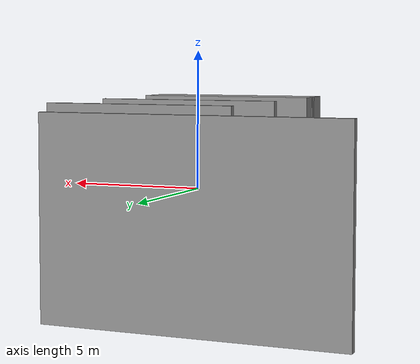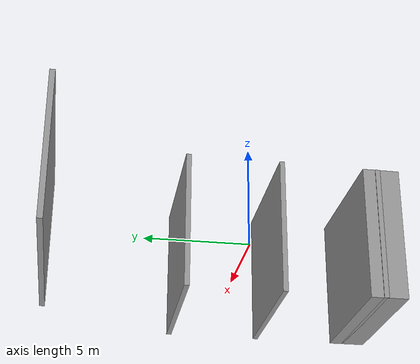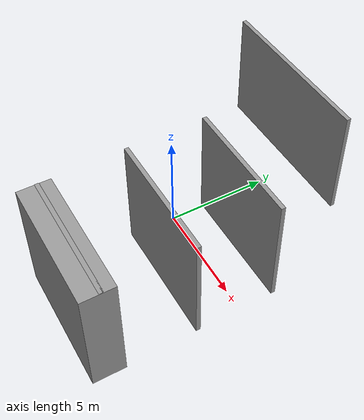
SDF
<?xml version='1.0'?>
<sdf version='1.7'>
  <model name='Untitled'>
    <link name='link_0'>
      <inertial>
        <mass>14.2696</mass>
        <inertia>
          <ixx>48.2133</ixx>
          <ixy>0</ixy>
          <ixz>0</ixz>
          <iyy>158.84</iyy>
          <iyz>0</iyz>
          <izz>110.755</izz>
        </inertia>
        <pose>0 0 0 0 -0 0</pose>
      </inertial>
      <pose>-3.73678 9.37764 0 0 -0 0</pose>
      <visual name='visual'>
        <pose>0 0 0 0 -0 0</pose>
        <geometry>
          <box>
            <size>9.64809 0.232379 6.36325</size>
          </box>
        </geometry>
        <material>
          <lighting>1</lighting>
          <script>
            <uri>file://media/materials/scripts/gazebo.material</uri>
            <name>Gazebo/Grey</name>
          </script>
          <shader type='pixel'/>
        </material>
        <transparency>0</transparency>
        <cast_shadows>1</cast_shadows>
      </visual>
      <collision name='collision'>
        <laser_retro>0</laser_retro>
        <max_contacts>10</max_contacts>
        <pose>0 0 0 0 -0 0</pose>
        <geometry>
          <box>
            <size>9.64809 0.232379 6.36325</size>
          </box>
        </geometry>
        <surface>
          <friction>
            <ode>
              <mu>1</mu>
              <mu2>1</mu2>
              <fdir1>0 0 0</fdir1>
              <slip1>0</slip1>
              <slip2>0</slip2>
            </ode>
            <torsional>
              <coefficient>1</coefficient>
              <patch_radius>0</patch_radius>
              <surface_radius>0</surface_radius>
              <use_patch_radius>1</use_patch_radius>
              <ode>
                <slip>0</slip>
              </ode>
            </torsional>
          </friction>
          <bounce>
            <restitution_coefficient>0</restitution_coefficient>
            <threshold>1e+06</threshold>
          </bounce>
          <contact>
            <collide_without_contact>0</collide_without_contact>
            <collide_without_contact_bitmask>1</collide_without_contact_bitmask>
            <collide_bitmask>1</collide_bitmask>
            <ode>
              <soft_cfm>0</soft_cfm>
              <soft_erp>0.2</soft_erp>
              <kp>1e+13</kp>
              <kd>1</kd>
              <max_vel>0.01</max_vel>
              <min_depth>0</min_depth>
            </ode>
            <bullet>
              <split_impulse>1</split_impulse>
              <split_impulse_penetration_threshold>-0.01</split_impulse_penetration_threshold>
              <soft_cfm>0</soft_cfm>
              <soft_erp>0.2</soft_erp>
              <kp>1e+13</kp>
              <kd>1</kd>
            </bullet>
          </contact>
        </surface>
      </collision>
    </link>
    <link name='link_0_clone'>
      <inertial>
        <mass>10.2728</mass>
        <inertia>
          <ixx>34.7092</ixx>
          <ixy>0</ixy>
          <ixz>0</ixz>
          <iyy>75.9624</iyy>
          <iyz>0</iyz>
          <izz>41.3457</izz>
        </inertia>
        <pose>0 0 0 0 -0 0</pose>
      </inertial>
      <pose>0.859265 3.25045 0 0 -0 0</pose>
      <visual name='visual'>
        <pose>0 0 0 0 -0 0</pose>
        <geometry>
          <box>
            <size>6.94574 0.232379 6.36325</size>
          </box>
        </geometry>
        <material>
          <lighting>1</lighting>
          <script>
            <uri>file://media/materials/scripts/gazebo.material</uri>
            <name>Gazebo/Grey</name>
          </script>
          <shader type='pixel'/>
        </material>
        <transparency>0</transparency>
        <cast_shadows>1</cast_shadows>
      </visual>
      <collision name='collision'>
        <laser_retro>0</laser_retro>
        <max_contacts>10</max_contacts>
        <pose>0 0 0 0 -0 0</pose>
        <geometry>
          <box>
            <size>6.94574 0.232379 6.36325</size>
          </box>
        </geometry>
        <surface>
          <friction>
            <ode>
              <mu>1</mu>
              <mu2>1</mu2>
              <fdir1>0 0 0</fdir1>
              <slip1>0</slip1>
              <slip2>0</slip2>
            </ode>
            <torsional>
              <coefficient>1</coefficient>
              <patch_radius>0</patch_radius>
              <surface_radius>0</surface_radius>
              <use_patch_radius>1</use_patch_radius>
              <ode>
                <slip>0</slip>
              </ode>
            </torsional>
          </friction>
          <bounce>
            <restitution_coefficient>0</restitution_coefficient>
            <threshold>1e+06</threshold>
          </bounce>
          <contact>
            <collide_without_contact>0</collide_without_contact>
            <collide_without_contact_bitmask>1</collide_without_contact_bitmask>
            <collide_bitmask>1</collide_bitmask>
            <ode>
              <soft_cfm>0</soft_cfm>
              <soft_erp>0.2</soft_erp>
              <kp>1e+13</kp>
              <kd>1</kd>
              <max_vel>0.01</max_vel>
              <min_depth>0</min_depth>
            </ode>
            <bullet>
              <split_impulse>1</split_impulse>
              <split_impulse_penetration_threshold>-0.01</split_impulse_penetration_threshold>
              <soft_cfm>0</soft_cfm>
              <soft_erp>0.2</soft_erp>
              <kp>1e+13</kp>
              <kd>1</kd>
            </bullet>
          </contact>
        </surface>
      </collision>
    </link>
    <link name='link_0_clone_clone'>
      <inertial>
        <mass>10.2728</mass>
        <inertia>
          <ixx>34.7092</ixx>
          <ixy>0</ixy>
          <ixz>0</ixz>
          <iyy>75.9624</iyy>
          <iyz>0</iyz>
          <izz>41.3457</izz>
        </inertia>
        <pose>0 0 0 0 -0 0</pose>
      </inertial>
      <pose>0.90707 -1.09514 0 0 -0 0</pose>
      <visual name='visual'>
        <pose>0 0 0 0 -0 0</pose>
        <geometry>
          <box>
            <size>6.94574 0.232379 6.36325</size>
          </box>
        </geometry>
        <material>
          <lighting>1</lighting>
          <script>
            <uri>file://media/materials/scripts/gazebo.material</uri>
            <name>Gazebo/Grey</name>
          </script>
          <shader type='pixel'/>
          <emissive>0 0 0 1</emissive>
        </material>
        <transparency>0</transparency>
        <cast_shadows>1</cast_shadows>
      </visual>
      <collision name='collision'>
        <laser_retro>0</laser_retro>
        <max_contacts>10</max_contacts>
        <pose>0 0 0 0 -0 0</pose>
        <geometry>
          <box>
            <size>6.94574 0.232379 6.36325</size>
          </box>
        </geometry>
        <surface>
          <friction>
            <ode>
              <mu>1</mu>
              <mu2>1</mu2>
              <fdir1>0 0 0</fdir1>
              <slip1>0</slip1>
              <slip2>0</slip2>
            </ode>
            <torsional>
              <coefficient>1</coefficient>
              <patch_radius>0</patch_radius>
              <surface_radius>0</surface_radius>
              <use_patch_radius>1</use_patch_radius>
              <ode>
                <slip>0</slip>
              </ode>
            </torsional>
          </friction>
          <bounce>
            <restitution_coefficient>0</restitution_coefficient>
            <threshold>1e+06</threshold>
          </bounce>
          <contact>
            <collide_without_contact>0</collide_without_contact>
            <collide_without_contact_bitmask>1</collide_without_contact_bitmask>
            <collide_bitmask>1</collide_bitmask>
            <ode>
              <soft_cfm>0</soft_cfm>
              <soft_erp>0.2</soft_erp>
              <kp>1e+13</kp>
              <kd>1</kd>
              <max_vel>0.01</max_vel>
              <min_depth>0</min_depth>
            </ode>
            <bullet>
              <split_impulse>1</split_impulse>
              <split_impulse_penetration_threshold>-0.01</split_impulse_penetration_threshold>
              <soft_cfm>0</soft_cfm>
              <soft_erp>0.2</soft_erp>
              <kp>1e+13</kp>
              <kd>1</kd>
            </bullet>
          </contact>
        </surface>
      </collision>
    </link>
    <link name='link_0_clone_clone_0'>
      <inertial>
        <mass>76.7642</mass>
        <inertia>
          <ixx>278.313</ixx>
          <ixy>0</ixy>
          <ixz>0</ixz>
          <iyy>567.634</iyy>
          <iyz>0</iyz>
          <izz>327.905</izz>
        </inertia>
        <pose>0 0 0 0 -0 0</pose>
      </inertial>
      <pose>0.998133 -5.846 0 0 -0 0</pose>
      <visual name='visual'>
        <pose>0 0 0 0 -0 0</pose>
        <geometry>
          <box>
            <size>6.94574 1.7366 6.36325</size>
          </box>
        </geometry>
        <material>
          <lighting>1</lighting>
          <script>
            <uri>file://media/materials/scripts/gazebo.material</uri>
            <name>Gazebo/Grey</name>
          </script>
          <shader type='pixel'/>
          <emissive>0 0 0 1</emissive>
        </material>
        <transparency>0</transparency>
        <cast_shadows>1</cast_shadows>
      </visual>
      <collision name='collision'>
        <laser_retro>0</laser_retro>
        <max_contacts>10</max_contacts>
        <pose>0 0 0 0 -0 0</pose>
        <geometry>
          <box>
            <size>6.94574 1.7366 6.36325</size>
          </box>
        </geometry>
        <surface>
          <friction>
            <ode>
              <mu>1</mu>
              <mu2>1</mu2>
              <fdir1>0 0 0</fdir1>
              <slip1>0</slip1>
              <slip2>0</slip2>
            </ode>
            <torsional>
              <coefficient>1</coefficient>
              <patch_radius>0</patch_radius>
              <surface_radius>0</surface_radius>
              <use_patch_radius>1</use_patch_radius>
              <ode>
                <slip>0</slip>
              </ode>
            </torsional>
          </friction>
          <bounce>
            <restitution_coefficient>0</restitution_coefficient>
            <threshold>1e+06</threshold>
          </bounce>
          <contact>
            <collide_without_contact>0</collide_without_contact>
            <collide_without_contact_bitmask>1</collide_without_contact_bitmask>
            <collide_bitmask>1</collide_bitmask>
            <ode>
              <soft_cfm>0</soft_cfm>
              <soft_erp>0.2</soft_erp>
              <kp>1e+13</kp>
              <kd>1</kd>
              <max_vel>0.01</max_vel>
              <min_depth>0</min_depth>
            </ode>
            <bullet>
              <split_impulse>1</split_impulse>
              <split_impulse_penetration_threshold>-0.01</split_impulse_penetration_threshold>
              <soft_cfm>0</soft_cfm>
              <soft_erp>0.2</soft_erp>
              <kp>1e+13</kp>
              <kd>1</kd>
            </bullet>
          </contact>
        </surface>
      </collision>
    </link>
    <link name='link_0_clone_clone_clone'>
      <inertial>
        <mass>10.2728</mass>
        <inertia>
          <ixx>34.7092</ixx>
          <ixy>0</ixy>
          <ixz>0</ixz>
          <iyy>75.9624</iyy>
          <iyz>0</iyz>
          <izz>41.3457</izz>
        </inertia>
        <pose>0 0 0 0 -0 0</pose>
      </inertial>
      <pose>0.972318 -5.68694 0 0 -0 0</pose>
      <visual name='visual'>
        <pose>0 0 0 0 -0 0</pose>
        <geometry>
          <box>
            <size>6.94574 0.232379 6.36325</size>
          </box>
        </geometry>
        <material>
          <lighting>1</lighting>
          <script>
            <uri>file://media/materials/scripts/gazebo.material</uri>
            <name>Gazebo/Grey</name>
          </script>
          <shader type='pixel'/>
        </material>
        <transparency>0</transparency>
        <cast_shadows>1</cast_shadows>
      </visual>
      <collision name='collision'>
        <laser_retro>0</laser_retro>
        <max_contacts>10</max_contacts>
        <pose>0 0 0 0 -0 0</pose>
        <geometry>
          <box>
            <size>6.94574 0.232379 6.36325</size>
          </box>
        </geometry>
        <surface>
          <friction>
            <ode>
              <mu>1</mu>
              <mu2>1</mu2>
              <fdir1>0 0 0</fdir1>
              <slip1>0</slip1>
              <slip2>0</slip2>
            </ode>
            <torsional>
              <coefficient>1</coefficient>
              <patch_radius>0</patch_radius>
              <surface_radius>0</surface_radius>
              <use_patch_radius>1</use_patch_radius>
              <ode>
                <slip>0</slip>
              </ode>
            </torsional>
          </friction>
          <bounce>
            <restitution_coefficient>0</restitution_coefficient>
            <threshold>1e+06</threshold>
          </bounce>
          <contact>
            <collide_without_contact>0</collide_without_contact>
            <collide_without_contact_bitmask>1</collide_without_contact_bitmask>
            <collide_bitmask>1</collide_bitmask>
            <ode>
              <soft_cfm>0</soft_cfm>
              <soft_erp>0.2</soft_erp>
              <kp>1e+13</kp>
              <kd>1</kd>
              <max_vel>0.01</max_vel>
              <min_depth>0</min_depth>
            </ode>
            <bullet>
              <split_impulse>1</split_impulse>
              <split_impulse_penetration_threshold>-0.01</split_impulse_penetration_threshold>
              <soft_cfm>0</soft_cfm>
              <soft_erp>0.2</soft_erp>
              <kp>1e+13</kp>
              <kd>1</kd>
            </bullet>
          </contact>
        </surface>
      </collision>
    </link>
    <static>0</static>
    <allow_auto_disable>1</allow_auto_disable>
  </model>
</sdf>
